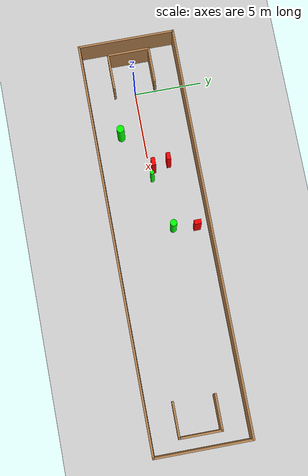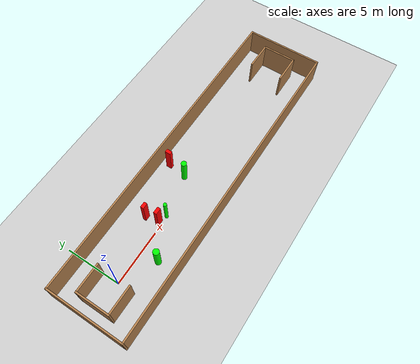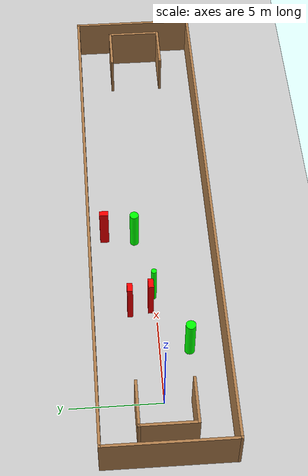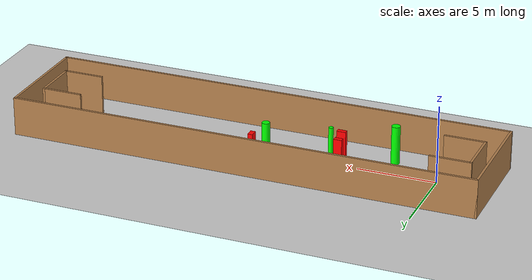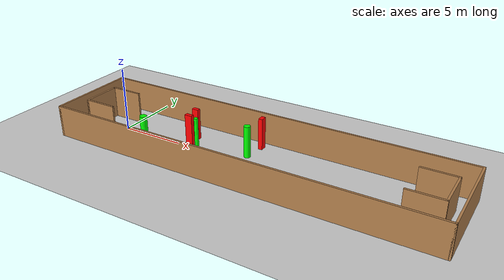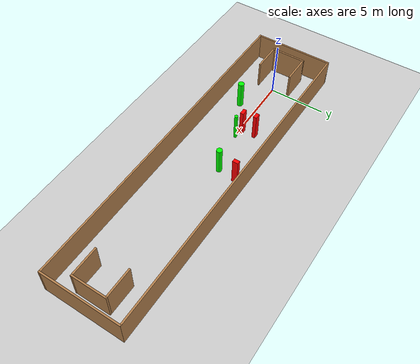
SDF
<sdf version="1.7">
 <world name="default">
  <light name="sun" type="directional">
   <pose>0 0 10 0 -0 0</pose>
   <diffuse>0.8 0.8 0.8 1</diffuse>
   <specular>0.2 0.2 0.2 1</specular>
   <attenuation>
    <range>1000</range>
    <constant>0.9</constant>
    <linear>0.01</linear>
    <quadratic>0.001</quadratic>
   </attenuation>
   <direction>-0.5 0.1 -0.9</direction>
   <spot><inner_angle>0</inner_angle><outer_angle>0</outer_angle><falloff>0</falloff></spot>
  </light>
  <model name="ground_plane">
   <static>1</static>
   <link name="link">
    <collision name="collision">
     <geometry><plane><normal>0 0 1</normal><size>100 100</size></plane></geometry>
     <surface>
      <contact><collide_bitmask>65535</collide_bitmask></contact>
      <friction><ode><mu>100</mu><mu2>50</mu2></ode></friction>
     </surface>
    </collision>
    <visual name="visual">
     <cast_shadows>0</cast_shadows>
     <geometry><plane><normal>0 0 1</normal><size>100 100</size></plane></geometry>
     <material>
      <script><uri>file://media/materials/scripts/gazebo.material</uri><name>Gazebo/Grey</name></script>
     </material>
    </visual>
   </link>
  </model>
  <gravity>0 0 -9.8</gravity>
  <magnetic_field>6e-06 2.3e-05 -4.2e-05</magnetic_field>
  <atmosphere type="adiabatic"/>
  <physics type="ode">
   <max_step_size>0.001</max_step_size>
   <real_time_factor>1</real_time_factor>
   <real_time_update_rate>1000</real_time_update_rate>
  </physics>
  <scene><ambient>0.4 0.4 0.4 1</ambient><background>0.7 0.7 0.7 1</background><shadows>1</shadows></scene>
  <spherical_coordinates>
   <surface_model>EARTH_WGS84</surface_model>
   <latitude_deg>0</latitude_deg>
   <longitude_deg>0</longitude_deg>
   <elevation>0</elevation>
   <heading_deg>0</heading_deg>
  </spherical_coordinates>
  <model name="my_base_walls">
   <link name="Wall_0">
    <collision name="Wall_0_Collision">
     <geometry><box><size>7.15 0.15 2.5</size></box></geometry>
     <pose>0 0 1.25 0 -0 0</pose>
    </collision>
    <visual name="Wall_0_Visual">
     <pose>0 0 1.25 0 -0 0</pose>
     <geometry><box><size>7.15 0.15 2.5</size></box></geometry>
     <material>
      <script><uri>file://media/materials/scripts/gazebo.material</uri><name>Gazebo/Wood</name></script>
      <ambient>1 1 1 1</ambient>
     </material>
     <meta><layer>0</layer></meta>
    </visual>
    <pose>-15 0 0 0 -0 1.5708</pose>
   </link>
   <link name="Wall_10">
    <collision name="Wall_10_Collision">
     <geometry><box><size>2.65 0.15 2.5</size></box></geometry>
     <pose>0 0 1.25 0 -0 0</pose>
    </collision>
    <visual name="Wall_10_Visual">
     <pose>0 0 1.25 0 -0 0</pose>
     <geometry><box><size>2.65 0.15 2.5</size></box></geometry>
     <material>
      <script><uri>file://media/materials/scripts/gazebo.material</uri><name>Gazebo/Wood</name></script>
      <ambient>1 1 1 1</ambient>
     </material>
     <meta><layer>0</layer></meta>
    </visual>
    <pose>-12.75 -1.5 0 0 -0 0</pose>
   </link>
   <link name="Wall_12">
    <collision name="Wall_12_Collision">
     <geometry><box><size>2.65 0.15 2.5</size></box></geometry>
     <pose>0 0 1.25 0 -0 0</pose>
    </collision>
    <visual name="Wall_12_Visual">
     <pose>0 0 1.25 0 -0 0</pose>
     <geometry><box><size>2.65 0.15 2.5</size></box></geometry>
     <material>
      <script><uri>file://media/materials/scripts/gazebo.material</uri><name>Gazebo/Wood</name></script>
      <ambient>1 1 1 1</ambient>
     </material>
     <meta><layer>0</layer></meta>
    </visual>
    <pose>-12.75 1.5 0 0 -0 0</pose>
   </link>
   <link name="Wall_14">
    <collision name="Wall_14_Collision">
     <geometry><box><size>3.15 0.15 2.5</size></box></geometry>
     <pose>0 0 1.25 0 -0 0</pose>
    </collision>
    <visual name="Wall_14_Visual">
     <pose>0 0 1.25 0 -0 0</pose>
     <geometry><box><size>3.15 0.15 2.5</size></box></geometry>
     <material>
      <script><uri>file://media/materials/scripts/gazebo.material</uri><name>Gazebo/Wood</name></script>
      <ambient>1 1 1 1</ambient>
     </material>
     <meta><layer>0</layer></meta>
    </visual>
    <pose>14 0 0 0 -0 -1.5708</pose>
   </link>
   <link name="Wall_15">
    <collision name="Wall_15_Collision">
     <geometry><box><size>2.65 0.15 2.5</size></box></geometry>
     <pose>0 0 1.25 0 -0 0</pose>
    </collision>
    <visual name="Wall_15_Visual">
     <pose>0 0 1.25 0 -0 0</pose>
     <geometry><box><size>2.65 0.15 2.5</size></box></geometry>
     <material>
      <script><uri>file://media/materials/scripts/gazebo.material</uri><name>Gazebo/Wood</name></script>
      <ambient>1 1 1 1</ambient>
     </material>
     <meta><layer>0</layer></meta>
    </visual>
    <pose>12.75 -1.5 0 0 -0 3.14159</pose>
   </link>
   <link name="Wall_17">
    <collision name="Wall_17_Collision">
     <geometry><box><size>2.65 0.15 2.5</size></box></geometry>
     <pose>0 0 1.25 0 -0 0</pose>
    </collision>
    <visual name="Wall_17_Visual">
     <pose>0 0 1.25 0 -0 0</pose>
     <geometry><box><size>2.65 0.15 2.5</size></box></geometry>
     <material>
      <script><uri>file://media/materials/scripts/gazebo.material</uri><name>Gazebo/Wood</name></script>
      <ambient>1 1 1 1</ambient>
     </material>
     <meta><layer>0</layer></meta>
    </visual>
    <pose>12.75 1.5 0 0 -0 3.14159</pose>
   </link>
   <link name="Wall_2">
    <collision name="Wall_2_Collision">
     <geometry><box><size>30.15 0.15 2.5</size></box></geometry>
     <pose>0 0 1.25 0 -0 0</pose>
    </collision>
    <visual name="Wall_2_Visual">
     <pose>0 0 1.25 0 -0 0</pose>
     <geometry><box><size>30.15 0.15 2.5</size></box></geometry>
     <material>
      <script><uri>file://media/materials/scripts/gazebo.material</uri><name>Gazebo/Wood</name></script>
      <ambient>1 1 1 1</ambient>
     </material>
     <meta><layer>0</layer></meta>
    </visual>
    <pose>-0 -3.5 0 0 -0 0</pose>
   </link>
   <link name="Wall_4">
    <collision name="Wall_4_Collision">
     <geometry><box><size>30.15 0.15 2.5</size></box></geometry>
     <pose>0 0 1.25 0 -0 0</pose>
    </collision>
    <visual name="Wall_4_Visual">
     <pose>0 0 1.25 0 -0 0</pose>
     <geometry><box><size>30.15 0.15 2.5</size></box></geometry>
     <material>
      <script><uri>file://media/materials/scripts/gazebo.material</uri><name>Gazebo/Wood</name></script>
      <ambient>1 1 1 1</ambient>
     </material>
     <meta><layer>0</layer></meta>
    </visual>
    <pose>-0 3.5 0 0 -0 0</pose>
   </link>
   <link name="Wall_6">
    <collision name="Wall_6_Collision">
     <geometry><box><size>7.15 0.15 2.5</size></box></geometry>
     <pose>0 0 1.25 0 -0 0</pose>
    </collision>
    <visual name="Wall_6_Visual">
     <pose>0 0 1.25 0 -0 0</pose>
     <geometry><box><size>7.15 0.15 2.5</size></box></geometry>
     <material>
      <script><uri>file://media/materials/scripts/gazebo.material</uri><name>Gazebo/Wood</name></script>
      <ambient>1 1 1 1</ambient>
     </material>
     <meta><layer>0</layer></meta>
    </visual>
    <pose>15 0 0 0 -0 -1.5708</pose>
   </link>
   <link name="Wall_9">
    <collision name="Wall_9_Collision">
     <geometry><box><size>3.15 0.15 2.5</size></box></geometry>
     <pose>0 0 1.25 0 -0 0</pose>
    </collision>
    <visual name="Wall_9_Visual">
     <pose>0 0 1.25 0 -0 0</pose>
     <geometry><box><size>3.15 0.15 2.5</size></box></geometry>
     <material>
      <script><uri>file://media/materials/scripts/gazebo.material</uri><name>Gazebo/Wood</name></script>
      <ambient>1 1 1 1</ambient>
     </material>
     <meta><layer>0</layer></meta>
    </visual>
    <pose>-14 0 0 0 -0 -1.5708</pose>
   </link>
   <static>1</static>
   <pose>11.5 0 0 0 -0 0</pose>
  </model>
  <model name="cylinder1">
   <static>1</static>
   <link name="link">
    <inertial>
     <mass>1</mass>
     <inertia><ixx>0.5</ixx><ixy>0</ixy><ixz>0</ixz><iyy>0.5</iyy><iyz>0</iyz><izz>1</izz></inertia>
    </inertial>
    <collision name="collision">
     <geometry><cylinder><radius>0.1516711868162251</radius><length>2.5</length></cylinder></geometry>
    </collision>
    <visual name="visual">
     <geometry><cylinder><radius>0.1516711868162251</radius><length>2.5</length></cylinder></geometry>
     <material>
      <ambient>0 1 0 1</ambient>
      <diffuse>0 1 0 1</diffuse>
      <specular>0.1 0.1 0.1 1</specular>
      <emissive>0 0 0 0</emissive>
     </material>
    </visual>
   </link>
   <pose>6.730706884043917 0.07407832848142082 1.25 0 0 0</pose>
  </model>
  <model name="cylinder2">
   <static>1</static>
   <link name="link">
    <inertial>
     <mass>1</mass>
     <inertia><ixx>0.5</ixx><ixy>0</ixy><ixz>0</ixz><iyy>0.5</iyy><iyz>0</iyz><izz>1</izz></inertia>
    </inertial>
    <collision name="collision">
     <geometry><cylinder><radius>0.27234231570705814</radius><length>2.5</length></cylinder></geometry>
    </collision>
    <visual name="visual">
     <geometry><cylinder><radius>0.27234231570705814</radius><length>2.5</length></cylinder></geometry>
     <material>
      <ambient>0 1 0 1</ambient>
      <diffuse>0 1 0 1</diffuse>
      <specular>0.1 0.1 0.1 1</specular>
      <emissive>0 0 0 0</emissive>
     </material>
    </visual>
   </link>
   <pose>3.1514294539051075 -1.6059454290939303 1.25 0 0 0</pose>
  </model>
  <model name="cylinder3">
   <static>1</static>
   <link name="link">
    <inertial>
     <mass>1</mass>
     <inertia><ixx>0.5</ixx><ixy>0</ixy><ixz>0</ixz><iyy>0.5</iyy><iyz>0</iyz><izz>1</izz></inertia>
    </inertial>
    <collision name="collision">
     <geometry><cylinder><radius>0.24799649820676564</radius><length>2.5</length></cylinder></geometry>
    </collision>
    <visual name="visual">
     <geometry><cylinder><radius>0.24799649820676564</radius><length>2.5</length></cylinder></geometry>
     <material>
      <ambient>0 1 0 1</ambient>
      <diffuse>0 1 0 1</diffuse>
      <specular>0.1 0.1 0.1 1</specular>
      <emissive>0 0 0 0</emissive>
     </material>
    </visual>
   </link>
   <pose>10.642172993188161 0.9018578783625362 1.25 0 0 0</pose>
  </model>
  <model name="box1">
   <static>1</static>
   <link name="link">
    <inertial>
     <mass>1</mass>
     <inertia><ixx>0.083</ixx><ixy>0</ixy><ixz>0</ixz><iyy>0.083</iyy><iyz>0</iyz><izz>0.083</izz></inertia>
    </inertial>
    <collision name="collision">
     <geometry><box><size>0.5774058551045965 0.29659242823488713 2.5</size></box></geometry>
    </collision>
    <visual name="visual">
     <geometry><box><size>0.5774058551045965 0.29659242823488713 2.5</size></box></geometry>
     <material>
      <ambient>1 0 0 1</ambient>
      <diffuse>1 0 0 1</diffuse>
      <specular>0.1 0.1 0.1 1</specular>
      <emissive>0 0 0 0</emissive>
     </material>
    </visual>
    <sensor name="my_contact" type="contact">
     <contact><collision>box_collision</collision><topic>__default_topic__</topic></contact>
    </sensor>
   </link>
   <pose>5.952336531433289 0.2965559217819367 1.25 0 0 0</pose>
  </model>
  <model name="box2">
   <static>1</static>
   <link name="link">
    <inertial>
     <mass>1</mass>
     <inertia><ixx>0.083</ixx><ixy>0</ixy><ixz>0</ixz><iyy>0.083</iyy><iyz>0</iyz><izz>0.083</izz></inertia>
    </inertial>
    <collision name="collision">
     <geometry><box><size>0.3174159336878467 0.5040882407882218 2.5</size></box></geometry>
    </collision>
    <visual name="visual">
     <geometry><box><size>0.3174159336878467 0.5040882407882218 2.5</size></box></geometry>
     <material>
      <ambient>1 0 0 1</ambient>
      <diffuse>1 0 0 1</diffuse>
      <specular>0.1 0.1 0.1 1</specular>
      <emissive>0 0 0 0</emissive>
     </material>
    </visual>
    <sensor name="my_contact" type="contact">
     <contact><collision>box_collision</collision><topic>__default_topic__</topic></contact>
    </sensor>
   </link>
   <pose>10.884238329081942 2.6044929886382437 1.25 0 0 0</pose>
  </model>
  <model name="box3">
   <static>1</static>
   <link name="link">
    <inertial>
     <mass>1</mass>
     <inertia><ixx>0.083</ixx><ixy>0</ixy><ixz>0</ixz><iyy>0.083</iyy><iyz>0</iyz><izz>0.083</izz></inertia>
    </inertial>
    <collision name="collision">
     <geometry><box><size>0.5220715185514613 0.2970701939020466 2.5</size></box></geometry>
    </collision>
    <visual name="visual">
     <geometry><box><size>0.5220715185514613 0.2970701939020466 2.5</size></box></geometry>
     <material>
      <ambient>1 0 0 1</ambient>
      <diffuse>1 0 0 1</diffuse>
      <specular>0.1 0.1 0.1 1</specular>
      <emissive>0 0 0 0</emissive>
     </material>
    </visual>
    <sensor name="my_contact" type="contact">
     <contact><collision>box_collision</collision><topic>__default_topic__</topic></contact>
    </sensor>
   </link>
   <pose>5.755116514277422 1.4434941458757429 1.25 0 0 0</pose>
  </model>
 </world>
</sdf>
